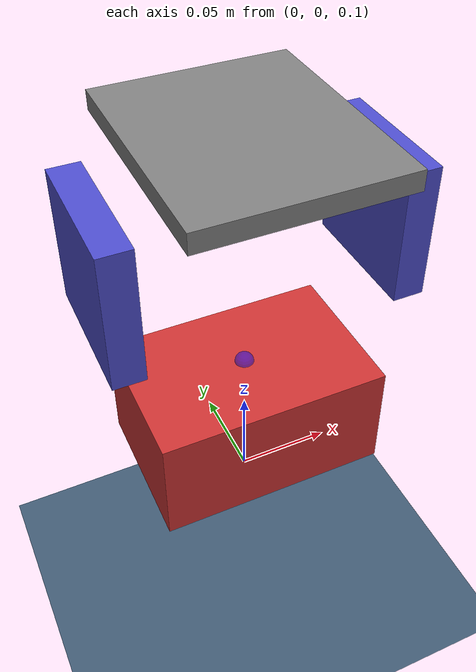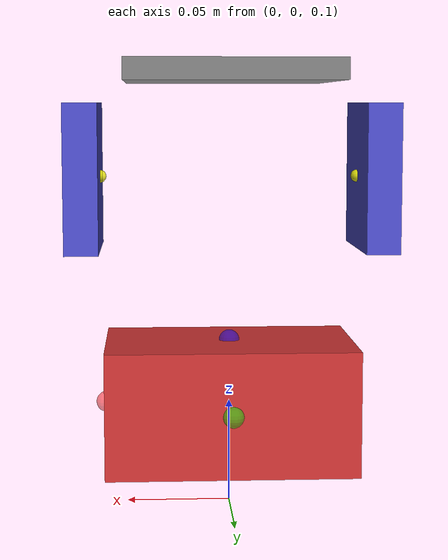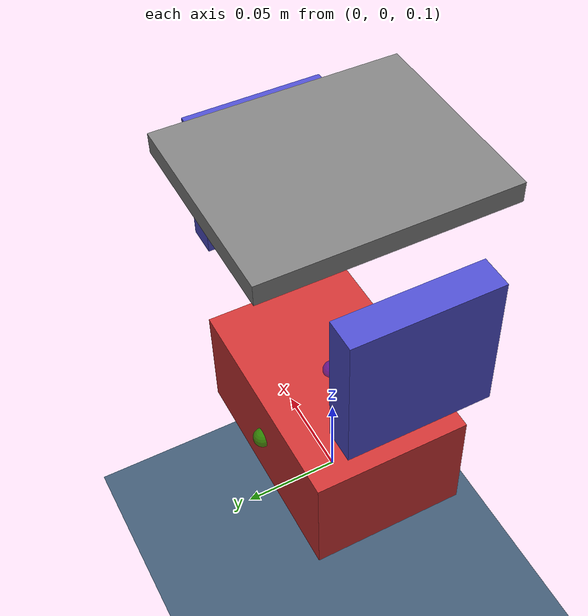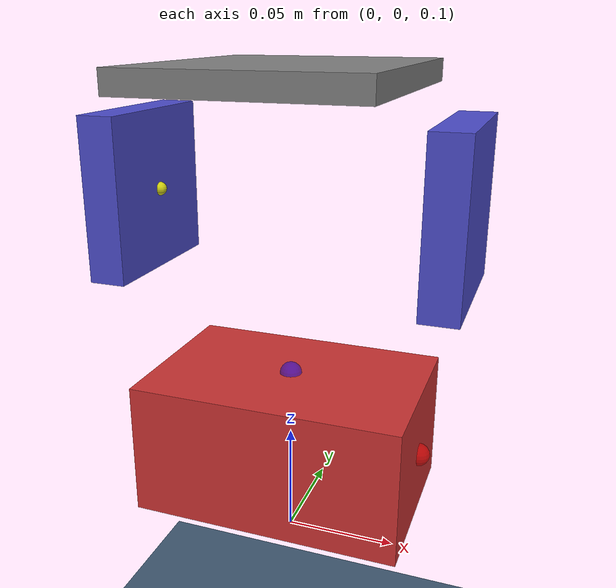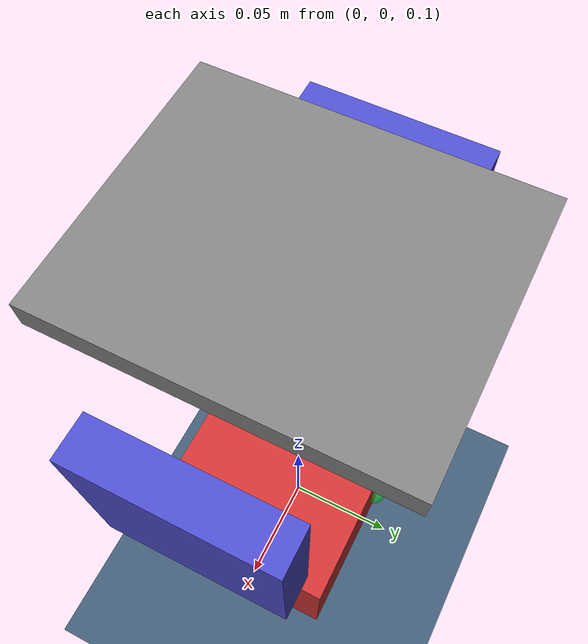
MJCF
<mujoco model="manipulation_damper">
  <compiler angle="radian"/>

  <option gravity="0 0 -9.81" timestep="0.002">
    <flag contact="enable"/>
  </option>

  <default>
    <geom condim="3" friction="0.8 0.005 0.0001" solref="0.02 1"
          solimp="0.9 0.95 0.001"/>
    <joint damping="0.1"/>
  </default>

  <asset>
    <texture type="skybox" builtin="gradient" rgb1="0.3 0.5 0.7"
             rgb2="0 0 0" width="512" height="512"/>
    <texture name="grid" type="2d" builtin="checker" rgb1="0.2 0.3 0.4"
             rgb2="0.3 0.4 0.5" width="512" height="512"/>
    <material name="grid" texture="grid" texrepeat="8 8"/>
    <material name="object" rgba="0.8 0.2 0.2 1"/>
    <material name="finger" rgba="0.3 0.3 0.8 1"/>
    <material name="palm" rgba="0.5 0.5 0.5 1"/>
  </asset>

  <worldbody>
    <!-- Ground plane -->
    <geom type="plane" size="1 1 0.01" material="grid"/>
    <light pos="0 0 3" dir="0 0 -1" diffuse="1 1 1"/>
    <light pos="0 -1 2" dir="0 0.5 -1" diffuse="0.5 0.5 0.5"/>

    <!-- Object to manipulate (box = 3 inertia axes = "3 bodies") -->
    <body name="object" pos="0 0 0.15">
      <freejoint name="object_joint"/>
      <geom name="object_geom" type="box" size="0.06 0.04 0.03"
            mass="0.5" material="object"/>
      <!-- Inertia axes markers (visual only) -->
      <site name="axis_x" pos="0.06 0 0" size="0.005" rgba="1 0 0 0.5"/>
      <site name="axis_y" pos="0 0.04 0" size="0.005" rgba="0 1 0 0.5"/>
      <site name="axis_z" pos="0 0 0.03" size="0.005" rgba="0 0 1 0.5"/>
    </body>

    <!-- Gripper (damper κ) -->
    <body name="gripper_base" pos="0 0 0.3">
      <!-- Vertical slide for approach -->
      <joint name="slide_z" type="slide" axis="0 0 1" range="-0.3 0.3"
             damping="0.5"/>
      <!-- Horizontal positioning -->
      <joint name="slide_x" type="slide" axis="1 0 0" range="-0.2 0.2"
             damping="0.5"/>
      <joint name="slide_y" type="slide" axis="0 1 0" range="-0.2 0.2"
             damping="0.5"/>

      <!-- Palm (raised above fingers to not block descent) -->
      <geom name="palm" type="box" size="0.05 0.06 0.005" pos="0 0 0.01"
            mass="0.2" material="palm"/>

      <!-- Left finger (drops below palm) -->
      <body name="finger_left" pos="-0.07 0 -0.04">
        <joint name="finger_left_joint" type="slide" axis="1 0 0"
               range="-0.01 0.06"/>
        <geom name="finger_left_geom" type="box" size="0.008 0.035 0.035"
              mass="0.05" material="finger"/>
        <site name="contact_left" pos="0.008 0 0" size="0.003"
              rgba="1 1 0 0.8"/>
      </body>

      <!-- Right finger -->
      <body name="finger_right" pos="0.07 0 -0.04">
        <joint name="finger_right_joint" type="slide" axis="1 0 0"
               range="-0.06 0.01"/>
        <geom name="finger_right_geom" type="box" size="0.008 0.035 0.035"
              mass="0.05" material="finger"/>
        <site name="contact_right" pos="-0.008 0 0" size="0.003"
              rgba="1 1 0 0.8"/>
      </body>
    </body>
  </worldbody>

  <actuator>
    <!-- Gripper positioning (the "orbit" of the damper) -->
    <position name="act_x" joint="slide_x" kp="200" ctrlrange="-0.2 0.2"/>
    <position name="act_y" joint="slide_y" kp="200" ctrlrange="-0.2 0.2"/>
    <position name="act_z" joint="slide_z" kp="500" ctrlrange="-0.3 0.3"/>
    <!-- Finger actuation (the "thrust" of the damper) -->
    <position name="act_finger_left" joint="finger_left_joint" kp="500"
              ctrlrange="-0.01 0.06"/>
    <position name="act_finger_right" joint="finger_right_joint" kp="500"
              ctrlrange="-0.06 0.01"/>
  </actuator>

  <sensor>
    <!-- Contact force sensors on finger tips -->
    <touch name="touch_left" site="contact_left"/>
    <touch name="touch_right" site="contact_right"/>
    <!-- Object position and orientation -->
    <framepos name="object_pos" objtype="body" objname="object"/>
    <framequat name="object_quat" objtype="body" objname="object"/>
  </sensor>
</mujoco>
